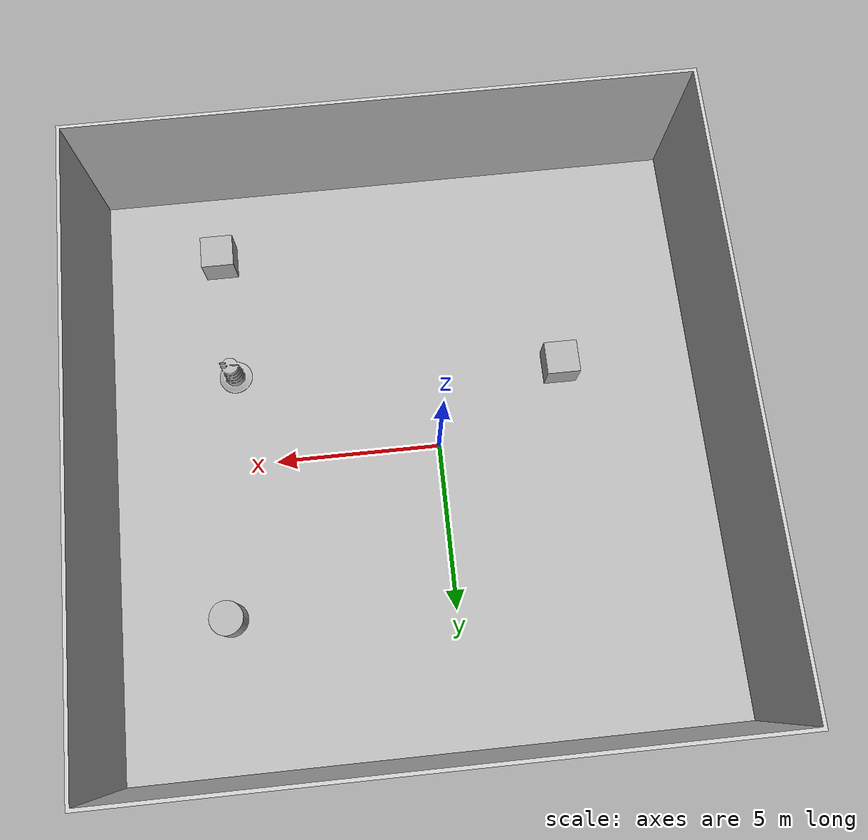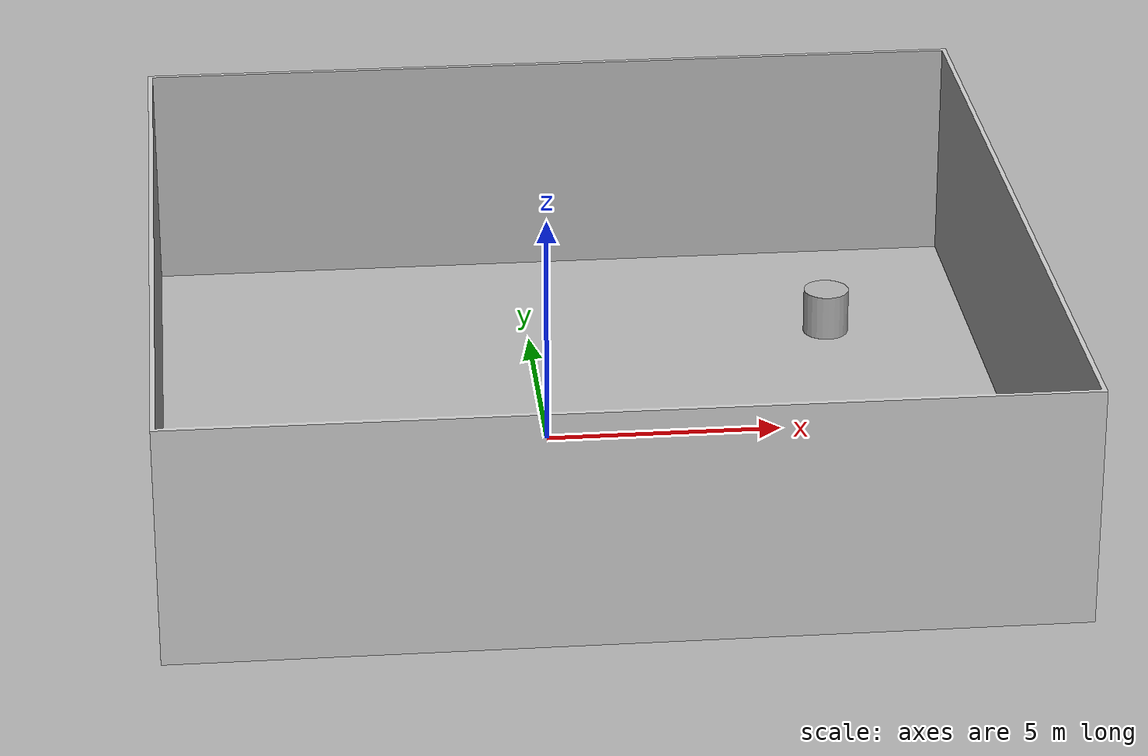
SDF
<sdf version='1.9'>
  <world name='rtab_map_stage_world'>
    <plugin name='ignition::gazebo::systems::Physics' filename='ignition-gazebo-physics-system'/>
    <plugin name='ignition::gazebo::systems::SceneBroadcaster' filename='ignition-gazebo-scene-broadcaster-system'/>
    <plugin name='gz::sim::systems::Sensors' filename='ignition-gazebo-sensors-system'>
      <render_engine>ogre2</render_engine>
    </plugin>
    <plugin name='ignition::gazebo::systems::UserCommands' filename='ignition-gazebo-user-commands-system'/>
    <gravity>0 0 -9.8</gravity>
    <magnetic_field>6e-06 2.3e-05 -4.2e-05</magnetic_field>
    <atmosphere type='adiabatic'/>
    <physics type='ode'>
      <max_step_size>0.001</max_step_size>
      <real_time_factor>1</real_time_factor>
      <real_time_update_rate>1000</real_time_update_rate>
    </physics>
    <scene>
      <ambient>0.4 0.4 0.4 1</ambient>
      <background>0.7 0.7 0.7 1</background>
      <shadows>true</shadows>
    </scene>
    <model name='rtab_map_stage'>
      <static>true</static>
      <link name='link'>
        <collision name='collision'>
          <geometry>
            <mesh>
              <scale>1 1 1</scale>
              <uri>file:///home/thamyis/gazebo_project/install/mecanum_bot/share/mecanum_bot/models/rtab_map_stage/model://rtab_map_stage/meshes/rtab_map_stage.stl</uri>
            </mesh>
          </geometry>
          <surface>
            <friction>
              <ode>
                <mu>1.2</mu>
                <mu2>1.2</mu2>
              </ode>
            </friction>
          </surface>
        </collision>
        <visual name='visual'>
          <geometry>
            <mesh>
              <scale>1 1 1</scale>
              <uri>file:///home/thamyis/gazebo_project/install/mecanum_bot/share/mecanum_bot/models/rtab_map_stage/model://rtab_map_stage/meshes/rtab_map_state.dae</uri>
            </mesh>
          </geometry>
        </visual>
        <pose>0 0 0 0 -0 0</pose>
        <inertial>
          <pose>0 0 0 0 -0 0</pose>
          <mass>1</mass>
          <inertia>
            <ixx>1</ixx>
            <ixy>0</ixy>
            <ixz>0</ixz>
            <iyy>1</iyy>
            <iyz>0</iyz>
            <izz>1</izz>
          </inertia>
        </inertial>
        <enable_wind>false</enable_wind>
      </link>
      <pose>0.859411 0 0 0 -0 0</pose>
      <self_collide>false</self_collide>
    </model>
    <model name='box'>
      <pose>-3.9799 -2.15257 0.599999 0 -0 -0</pose>
      <link name='box_link'>
        <inertial>
          <inertia>
            <ixx>0.16666</ixx>
            <ixy>0</ixy>
            <ixz>0</ixz>
            <iyy>0.16666</iyy>
            <iyz>0</iyz>
            <izz>0.16666</izz>
          </inertia>
          <mass>1</mass>
          <pose>0 0 0 0 -0 0</pose>
        </inertial>
        <collision name='box_collision'>
          <geometry>
            <box>
              <size>1 1 1</size>
            </box>
          </geometry>
          <surface>
            <friction>
              <ode/>
            </friction>
            <bounce/>
            <contact/>
          </surface>
        </collision>
        <visual name='box_visual'>
          <geometry>
            <box>
              <size>1 1 1</size>
            </box>
          </geometry>
          <material>
            <ambient>0.3 0.3 0.3 1</ambient>
            <diffuse>0.7 0.7 0.7 1</diffuse>
            <specular>1 1 1 1</specular>
          </material>
        </visual>
        <pose>0 0 0 0 -0 0</pose>
        <enable_wind>false</enable_wind>
      </link>
      <static>false</static>
      <self_collide>false</self_collide>
    </model>
    <model name='box_0'>
      <pose>6.30584 -6.70821 0.599999 0 -0 0</pose>
      <link name='box_link'>
        <inertial>
          <inertia>
            <ixx>0.16666</ixx>
            <ixy>0</ixy>
            <ixz>0</ixz>
            <iyy>0.16666</iyy>
            <iyz>0</iyz>
            <izz>0.16666</izz>
          </inertia>
          <mass>1</mass>
          <pose>0 0 0 0 -0 0</pose>
        </inertial>
        <collision name='box_collision'>
          <geometry>
            <box>
              <size>1 1 1</size>
            </box>
          </geometry>
          <surface>
            <friction>
              <ode/>
            </friction>
            <bounce/>
            <contact/>
          </surface>
        </collision>
        <visual name='box_visual'>
          <geometry>
            <box>
              <size>1 1 1</size>
            </box>
          </geometry>
          <material>
            <ambient>0.3 0.3 0.3 1</ambient>
            <diffuse>0.7 0.7 0.7 1</diffuse>
            <specular>1 1 1 1</specular>
          </material>
        </visual>
        <pose>0 0 0 0 -0 0</pose>
        <enable_wind>false</enable_wind>
      </link>
      <static>false</static>
      <self_collide>false</self_collide>
    </model>
    <model name='cylinder'>
      <pose>6.63663 4.63905 0.6 0 0 0</pose>
      <link name='cylinder_link'>
        <inertial>
          <inertia>
            <ixx>0.14580000000000001</ixx>
            <ixy>0</ixy>
            <ixz>0</ixz>
            <iyy>0.14580000000000001</iyy>
            <iyz>0</iyz>
            <izz>0.125</izz>
          </inertia>
          <mass>1</mass>
          <pose>0 0 0 0 -0 0</pose>
        </inertial>
        <collision name='cylinder_collision'>
          <geometry>
            <cylinder>
              <radius>0.5</radius>
              <length>1</length>
            </cylinder>
          </geometry>
          <surface>
            <friction>
              <ode/>
            </friction>
            <bounce/>
            <contact/>
          </surface>
        </collision>
        <visual name='cylinder_visual'>
          <geometry>
            <cylinder>
              <radius>0.5</radius>
              <length>1</length>
            </cylinder>
          </geometry>
          <material>
            <ambient>0.3 0.3 0.3 1</ambient>
            <diffuse>0.7 0.7 0.7 1</diffuse>
            <specular>1 1 1 1</specular>
          </material>
        </visual>
        <pose>0 0 0 0 -0 0</pose>
        <enable_wind>false</enable_wind>
      </link>
      <static>false</static>
      <self_collide>false</self_collide>
    </model>
    <model name='construction_barrel'>
      <link name='link'>
        <visual name='visual'>
          <geometry>
            <mesh>
              <uri>file:///home/thamyis/gazebo_project/models/construction_barrel/meshes/construction_barrel.dae</uri>
            </mesh>
          </geometry>
        </visual>
        <collision name='collision'>
          <geometry>
            <mesh>
              <uri>file:///home/thamyis/gazebo_project/models/construction_barrel/meshes/construction_barrel.dae</uri>
            </mesh>
          </geometry>
        </collision>
        <pose>0 0 0 0 -0 0</pose>
        <inertial>
          <pose>0 0 0 0 -0 0</pose>
          <mass>1</mass>
          <inertia>
            <ixx>1</ixx>
            <ixy>0</ixy>
            <ixz>0</ixz>
            <iyy>1</iyy>
            <iyz>0</iyz>
            <izz>1</izz>
          </inertia>
        </inertial>
        <enable_wind>false</enable_wind>
      </link>
      <pose>6.08069 -2.82173 0.099999 0 0 5.8e-05</pose>
      <static>false</static>
      <self_collide>false</self_collide>
    </model>
    <light name='sun' type='directional'>
      <pose>0 0 10 0 -0 0</pose>
      <cast_shadows>true</cast_shadows>
      <intensity>1</intensity>
      <direction>-0.5 0.1 -1</direction>
      <diffuse>1 1 1 1</diffuse>
      <specular>0.1 0.1 0.1 1</specular>
      <attenuation>
        <range>100</range>
        <linear>0.01</linear>
        <constant>0.90000000000000002</constant>
        <quadratic>0.001</quadratic>
      </attenuation>
      <spot>
        <inner_angle>0</inner_angle>
        <outer_angle>0</outer_angle>
        <falloff>0</falloff>
      </spot>
    </light>
  </world>
</sdf>
